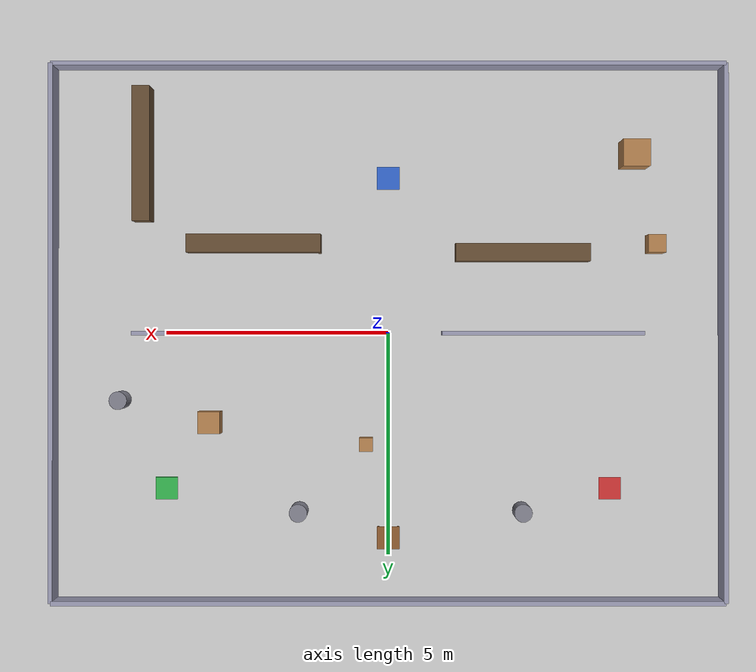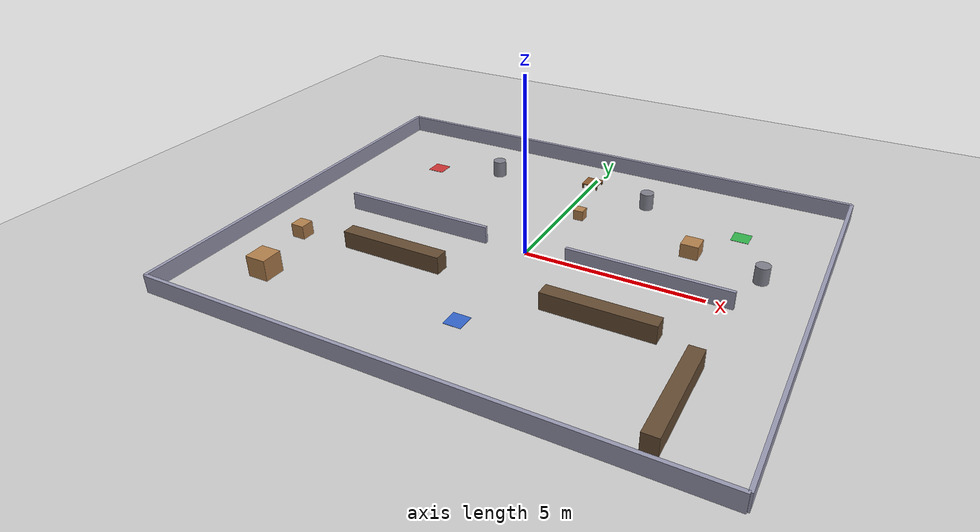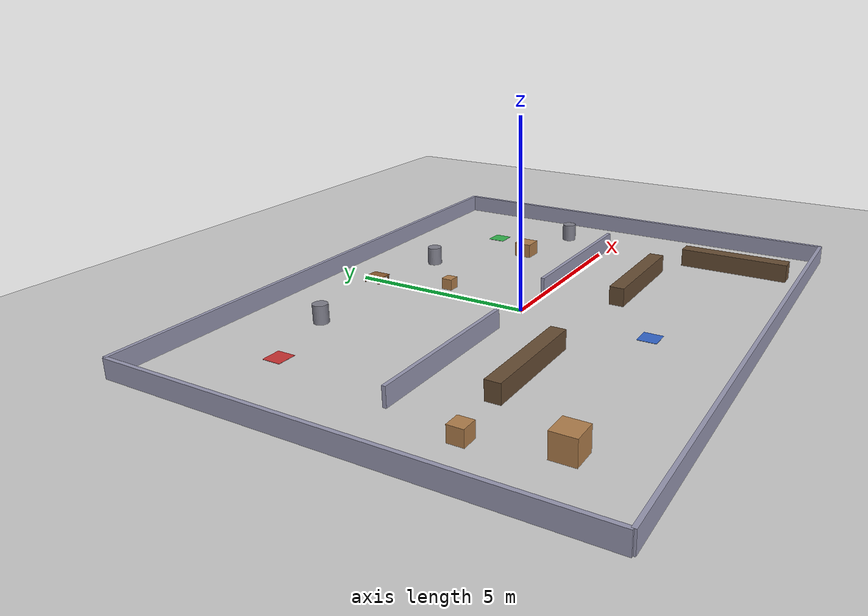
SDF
<?xml version="1.0"?>
<sdf version="1.9">
  <world name="warehouse">

    <physics name="1ms" type="ignored">
      <max_step_size>0.001</max_step_size>
      <real_time_factor>1.0</real_time_factor>
    </physics>

    <plugin filename="gz-sim-physics-system"
            name="gz::sim::systems::Physics"/>
    <plugin filename="gz-sim-user-commands-system"
            name="gz::sim::systems::UserCommands"/>
    <plugin filename="gz-sim-scene-broadcaster-system"
            name="gz::sim::systems::SceneBroadcaster"/>
    <plugin filename="gz-sim-sensors-system"
            name="gz::sim::systems::Sensors">
      <render_engine>ogre2</render_engine>
    </plugin>
    <plugin filename="gz-sim-imu-system"
            name="gz::sim::systems::Imu"/>
    <!-- Contact : permet de detecter les contacts (saisie / depose) plus tard. -->
    <plugin filename="gz-sim-contact-system"
            name="gz::sim::systems::Contact"/>

    <light type="directional" name="sun">
      <cast_shadows>true</cast_shadows>
      <pose>0 0 10 0 0 0</pose>
      <diffuse>0.9 0.9 0.9 1</diffuse>
      <specular>0.2 0.2 0.2 1</specular>
      <direction>-0.5 0.3 -1</direction>
    </light>

    <!-- Sol -->
    <model name="ground_plane">
      <static>true</static>
      <link name="link">
        <collision name="collision">
          <geometry><plane><normal>0 0 1</normal><size>50 50</size></plane></geometry>
        </collision>
        <visual name="visual">
          <geometry><plane><normal>0 0 1</normal><size>50 50</size></plane></geometry>
          <material>
            <ambient>0.8 0.8 0.8 1</ambient>
            <diffuse>0.8 0.8 0.8 1</diffuse>
          </material>
        </visual>
      </link>
    </model>

    <!-- ================= Murs d'enceinte (15 x 12 m) ======================= -->
    <model name="wall_north">
      <static>true</static>
      <pose>0 6 0.25 0 0 0</pose>
      <link name="link">
        <collision name="c"><geometry><box><size>15 0.1 0.5</size></box></geometry></collision>
        <visual name="v"><geometry><box><size>15 0.1 0.5</size></box></geometry>
          <material><ambient>0.6 0.6 0.7 1</ambient><diffuse>0.6 0.6 0.7 1</diffuse></material></visual>
      </link>
    </model>
    <model name="wall_south">
      <static>true</static>
      <pose>0 -6 0.25 0 0 0</pose>
      <link name="link">
        <collision name="c"><geometry><box><size>15 0.1 0.5</size></box></geometry></collision>
        <visual name="v"><geometry><box><size>15 0.1 0.5</size></box></geometry>
          <material><ambient>0.6 0.6 0.7 1</ambient><diffuse>0.6 0.6 0.7 1</diffuse></material></visual>
      </link>
    </model>
    <model name="wall_east">
      <static>true</static>
      <pose>7.5 0 0.25 0 0 0</pose>
      <link name="link">
        <collision name="c"><geometry><box><size>0.1 12 0.5</size></box></geometry></collision>
        <visual name="v"><geometry><box><size>0.1 12 0.5</size></box></geometry>
          <material><ambient>0.6 0.6 0.7 1</ambient><diffuse>0.6 0.6 0.7 1</diffuse></material></visual>
      </link>
    </model>
    <model name="wall_west">
      <static>true</static>
      <pose>-7.5 0 0.25 0 0 0</pose>
      <link name="link">
        <collision name="c"><geometry><box><size>0.1 12 0.5</size></box></geometry></collision>
        <visual name="v"><geometry><box><size>0.1 12 0.5</size></box></geometry>
          <material><ambient>0.6 0.6 0.7 1</ambient><diffuse>0.6 0.6 0.7 1</diffuse></material></visual>
      </link>
    </model>

    <!-- Cloison interieure avec passage : separe l'entrepot en 2 sous-espaces.
         Deux segments laissant un passage de ~1.6 m au centre (x in [-0.8, 0.8]). -->
    <model name="partition_left">
      <static>true</static>
      <pose>-3.45 0 0.25 0 0 0</pose>
      <link name="link">
        <collision name="c"><geometry><box><size>4.5 0.1 0.5</size></box></geometry></collision>
        <visual name="v"><geometry><box><size>4.5 0.1 0.5</size></box></geometry>
          <material><ambient>0.6 0.6 0.7 1</ambient><diffuse>0.6 0.6 0.7 1</diffuse></material></visual>
      </link>
    </model>
    <model name="partition_right">
      <static>true</static>
      <pose>3.45 0 0.25 0 0 0</pose>
      <link name="link">
        <collision name="c"><geometry><box><size>4.5 0.1 0.5</size></box></geometry></collision>
        <visual name="v"><geometry><box><size>4.5 0.1 0.5</size></box></geometry>
          <material><ambient>0.6 0.6 0.7 1</ambient><diffuse>0.6 0.6 0.7 1</diffuse></material></visual>
      </link>
    </model>

    <model name="zone_a">
      <static>true</static>
      <pose>-5 3.5 0.005 0 0 0</pose>
      <link name="link">
        <visual name="v"><geometry><box><size>0.5 0.5 0.01</size></box></geometry>
          <material><ambient>0.8 0.2 0.2 1</ambient><diffuse>0.8 0.2 0.2 1</diffuse></material></visual>
      </link>
    </model>
    <model name="zone_b">
      <static>true</static>
      <pose>5 3.5 0.005 0 0 0</pose>
      <link name="link">
        <visual name="v"><geometry><box><size>0.5 0.5 0.01</size></box></geometry>
          <material><ambient>0.2 0.7 0.3 1</ambient><diffuse>0.2 0.7 0.3 1</diffuse></material></visual>
      </link>
    </model>
    <model name="zone_c">
      <static>true</static>
      <pose>0 -3.5 0.005 0 0 0</pose>
      <link name="link">
        <visual name="v"><geometry><box><size>0.5 0.5 0.01</size></box></geometry>
          <material><ambient>0.2 0.4 0.8 1</ambient><diffuse>0.2 0.4 0.8 1</diffuse></material></visual>
      </link>
    </model>

    <model name="pick_station">
      <static>true</static>
      <pose>0 4.6 0 0 0 0</pose>
      <link name="link">
        <!-- plateau : epaisseur 0.03, centre z = 0.15 - 0.015 = 0.135 -->
        <collision name="top_col">
          <pose>0 0 0.135 0 0 0</pose>
          <geometry><box><size>0.5 0.5 0.03</size></box></geometry>
        </collision>
        <visual name="top_vis">
          <pose>0 0 0.135 0 0 0</pose>
          <geometry><box><size>0.5 0.5 0.03</size></box></geometry>
          <material><ambient>0.45 0.30 0.15 1</ambient><diffuse>0.55 0.35 0.18 1</diffuse></material>
        </visual>
        <!-- 4 pieds 0.04x0.04x0.12, centre z=0.06, aux coins (+/-0.22, +/-0.22) -->
        <collision name="leg1_col"><pose>0.22 0.22 0.06 0 0 0</pose>
          <geometry><box><size>0.04 0.04 0.12</size></box></geometry></collision>
        <visual name="leg1_vis"><pose>0.22 0.22 0.06 0 0 0</pose>
          <geometry><box><size>0.04 0.04 0.12</size></box></geometry>
          <material><ambient>0.40 0.26 0.13 1</ambient><diffuse>0.50 0.32 0.16 1</diffuse></material></visual>
        <collision name="leg2_col"><pose>-0.22 0.22 0.06 0 0 0</pose>
          <geometry><box><size>0.04 0.04 0.12</size></box></geometry></collision>
        <visual name="leg2_vis"><pose>-0.22 0.22 0.06 0 0 0</pose>
          <geometry><box><size>0.04 0.04 0.12</size></box></geometry>
          <material><ambient>0.40 0.26 0.13 1</ambient><diffuse>0.50 0.32 0.16 1</diffuse></material></visual>
        <collision name="leg3_col"><pose>0.22 -0.22 0.06 0 0 0</pose>
          <geometry><box><size>0.04 0.04 0.12</size></box></geometry></collision>
        <visual name="leg3_vis"><pose>0.22 -0.22 0.06 0 0 0</pose>
          <geometry><box><size>0.04 0.04 0.12</size></box></geometry>
          <material><ambient>0.40 0.26 0.13 1</ambient><diffuse>0.50 0.32 0.16 1</diffuse></material></visual>
        <collision name="leg4_col"><pose>-0.22 -0.22 0.06 0 0 0</pose>
          <geometry><box><size>0.04 0.04 0.12</size></box></geometry></collision>
        <visual name="leg4_vis"><pose>-0.22 -0.22 0.06 0 0 0</pose>
          <geometry><box><size>0.04 0.04 0.12</size></box></geometry>
          <material><ambient>0.40 0.26 0.13 1</ambient><diffuse>0.50 0.32 0.16 1</diffuse></material></visual>
      </link>
    </model>

    <!-- ================= Rayonnages (allees) =============================== -->
    <model name="shelf_1">
      <static>true</static>
      <pose>-3 -1.8 0.25 0 0 0</pose>
      <link name="link">
        <collision name="c"><geometry><box><size>3 0.4 0.5</size></box></geometry></collision>
        <visual name="v"><geometry><box><size>3 0.4 0.5</size></box></geometry>
          <material><ambient>0.4 0.3 0.2 1</ambient><diffuse>0.4 0.3 0.2 1</diffuse></material></visual>
      </link>
    </model>
    <model name="shelf_2">
      <static>true</static>
      <pose>3 -2 0.25 0 0 0</pose>
      <link name="link">
        <collision name="c"><geometry><box><size>3 0.4 0.5</size></box></geometry></collision>
        <visual name="v"><geometry><box><size>3 0.4 0.5</size></box></geometry>
          <material><ambient>0.4 0.3 0.2 1</ambient><diffuse>0.4 0.3 0.2 1</diffuse></material></visual>
      </link>
    </model>
    <model name="shelf_3">
      <static>true</static>
      <pose>5.5 -4 0.25 0 0 1.5708</pose>
      <link name="link">
        <collision name="c"><geometry><box><size>3 0.4 0.5</size></box></geometry></collision>
        <visual name="v"><geometry><box><size>3 0.4 0.5</size></box></geometry>
          <material><ambient>0.4 0.3 0.2 1</ambient><diffuse>0.4 0.3 0.2 1</diffuse></material></visual>
      </link>
    </model>

    <!-- ================= Piliers / colonnes =============================== -->
    <model name="pillar_1">
      <static>true</static>
      <pose>-3 4 0.25 0 0 0</pose>
      <link name="link">
        <collision name="c"><geometry><cylinder><radius>0.2</radius><length>0.5</length></cylinder></geometry></collision>
        <visual name="v"><geometry><cylinder><radius>0.2</radius><length>0.5</length></cylinder></geometry>
          <material><ambient>0.5 0.5 0.55 1</ambient><diffuse>0.5 0.5 0.55 1</diffuse></material></visual>
      </link>
    </model>
    <model name="pillar_2">
      <static>true</static>
      <pose>2 4 0.25 0 0 0</pose>
      <link name="link">
        <collision name="c"><geometry><cylinder><radius>0.2</radius><length>0.5</length></cylinder></geometry></collision>
        <visual name="v"><geometry><cylinder><radius>0.2</radius><length>0.5</length></cylinder></geometry>
          <material><ambient>0.5 0.5 0.55 1</ambient><diffuse>0.5 0.5 0.55 1</diffuse></material></visual>
      </link>
    </model>
    <model name="pillar_3">
      <static>true</static>
      <pose>6 1.5 0.25 0 0 0</pose>
      <link name="link">
        <collision name="c"><geometry><cylinder><radius>0.2</radius><length>0.5</length></cylinder></geometry></collision>
        <visual name="v"><geometry><cylinder><radius>0.2</radius><length>0.5</length></cylinder></geometry>
          <material><ambient>0.5 0.5 0.55 1</ambient><diffuse>0.5 0.5 0.55 1</diffuse></material></visual>
      </link>
    </model>

    <!-- ================= Caisses / palettes =============================== -->
    <model name="crate_1">
      <static>true</static>
      <pose>-6 -2 0.2 0 0 0</pose>
      <link name="link">
        <collision name="c"><geometry><box><size>0.4 0.4 0.4</size></box></geometry></collision>
        <visual name="v"><geometry><box><size>0.4 0.4 0.4</size></box></geometry>
          <material><ambient>0.7 0.5 0.3 1</ambient><diffuse>0.7 0.5 0.3 1</diffuse></material></visual>
      </link>
    </model>
    <model name="crate_2">
      <static>true</static>
      <pose>-5.5 -4 0.3 0 0 0</pose>
      <link name="link">
        <collision name="c"><geometry><box><size>0.6 0.6 0.6</size></box></geometry></collision>
        <visual name="v"><geometry><box><size>0.6 0.6 0.6</size></box></geometry>
          <material><ambient>0.7 0.5 0.3 1</ambient><diffuse>0.7 0.5 0.3 1</diffuse></material></visual>
      </link>
    </model>
    <model name="crate_3">
      <static>true</static>
      <pose>0.5 2.5 0.15 0 0 0</pose>
      <link name="link">
        <collision name="c"><geometry><box><size>0.3 0.3 0.3</size></box></geometry></collision>
        <visual name="v"><geometry><box><size>0.3 0.3 0.3</size></box></geometry>
          <material><ambient>0.7 0.5 0.3 1</ambient><diffuse>0.7 0.5 0.3 1</diffuse></material></visual>
      </link>
    </model>
    <model name="crate_4">
      <static>true</static>
      <pose>4 2 0.2 0 0 0</pose>
      <link name="link">
        <collision name="c"><geometry><box><size>0.5 0.5 0.4</size></box></geometry></collision>
        <visual name="v"><geometry><box><size>0.5 0.5 0.4</size></box></geometry>
          <material><ambient>0.7 0.5 0.3 1</ambient><diffuse>0.7 0.5 0.3 1</diffuse></material></visual>
      </link>
    </model>

  </world>
</sdf>
